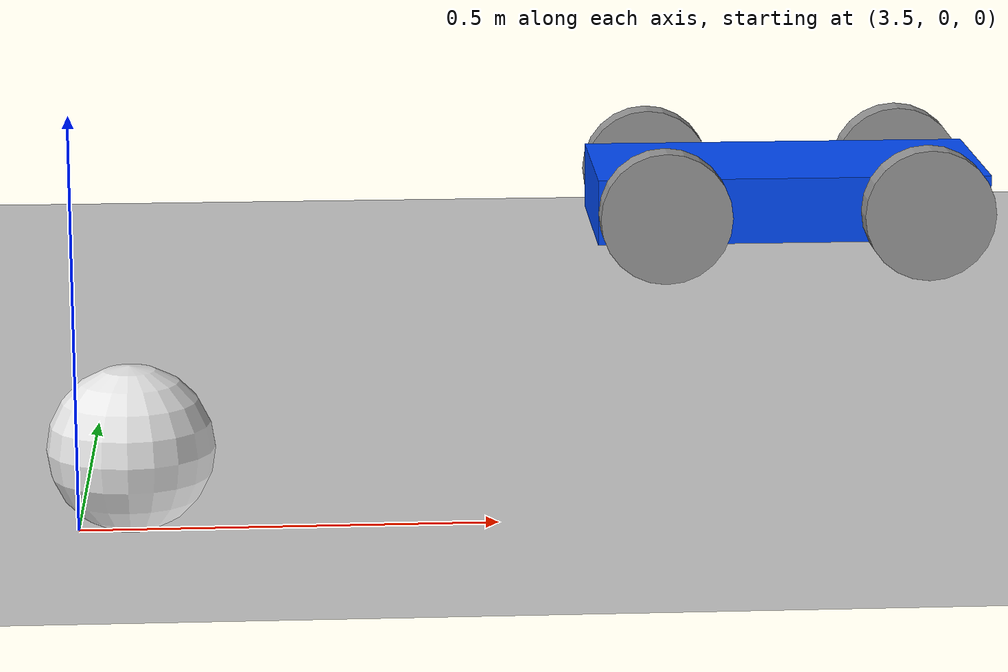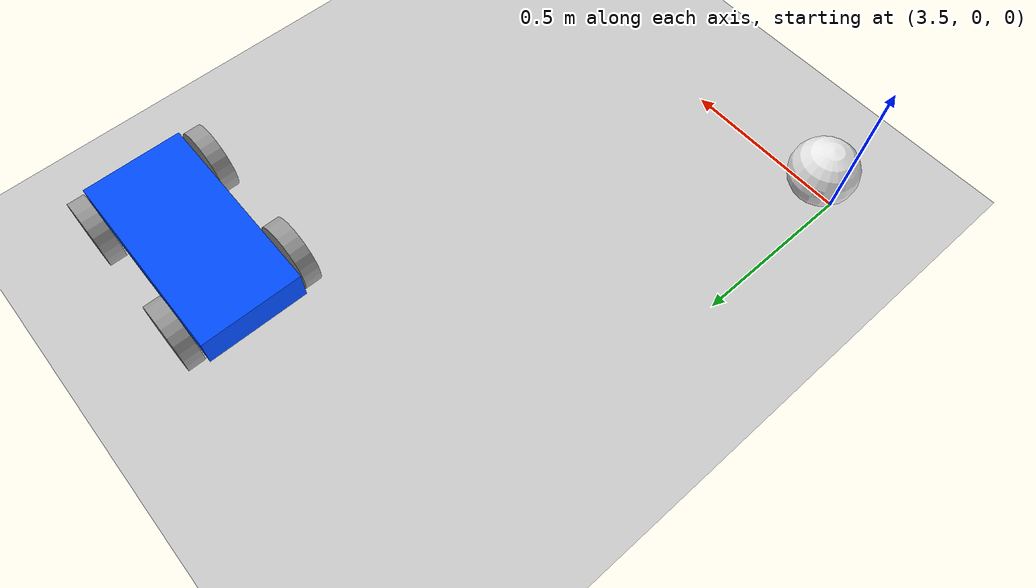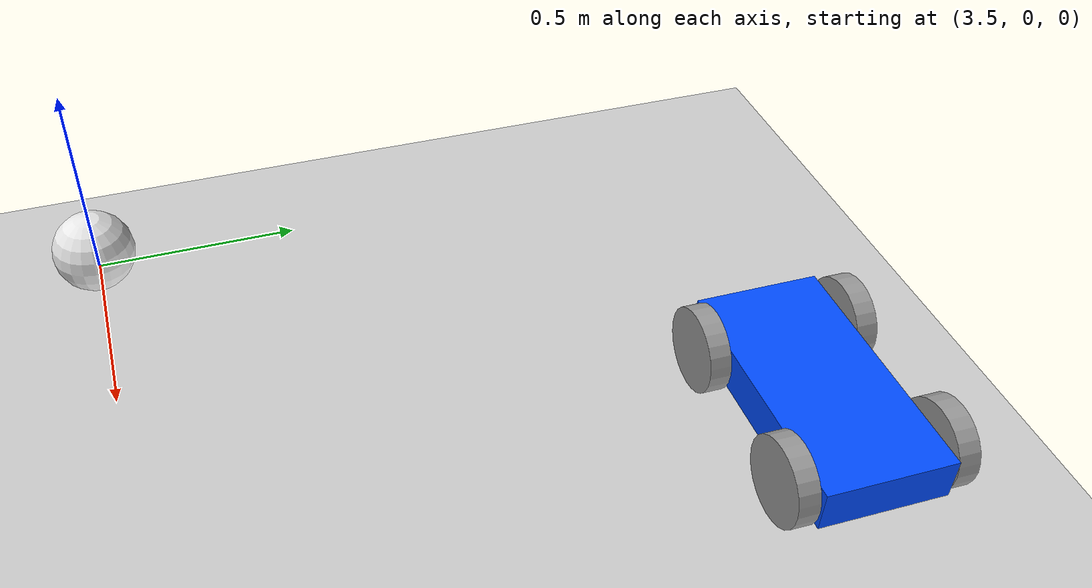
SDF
<sdf version="1.6">
 <world name="default">
  <model name="ground_plane">
   <static>1</static>
   <link name="link">
    <collision name="collision">
     <geometry><plane><normal>0 0 1</normal><size>100 100</size></plane></geometry>
     <surface>
      <contact><collide_bitmask>65535</collide_bitmask></contact>
      <friction><ode><mu>100</mu><mu2>50</mu2></ode></friction>
     </surface>
    </collision>
    <visual name="visual">
     <cast_shadows>0</cast_shadows>
     <geometry><plane><normal>0 0 1</normal><size>100 100</size></plane></geometry>
     <material>
      <script><uri>file://media/materials/scripts/gazebo.material</uri><name>Gazebo/Grey</name></script>
     </material>
    </visual>
   </link>
  </model>
  <model name="robot">
   <static>0</static>
   <link name="chassis">
    <inertial>
     <mass>1</mass>
     <inertia>
      <ixx>0.166667</ixx>
      <ixy>0</ixy>
      <ixz>0</ixz>
      <iyy>0.166667</iyy>
      <iyz>0</iyz>
      <izz>0.166667</izz>
     </inertia>
    </inertial>
    <visual name="visual">
     <geometry><box><size>0.6 0.3 0.1</size></box></geometry>
     <material>
      <lighting>1</lighting>
      <script><uri>file://media/materials/scripts/gazebo.material</uri><name>Gazebo/Grey</name></script>
      <shader type="vertex"><normal_map>__default__</normal_map></shader>
      <ambient>0.3 0.3 0.3 1</ambient>
      <diffuse>0 0.298 1 1</diffuse>
      <specular>0.01 0.01 0.01 1</specular>
      <emissive>0 0 0 1</emissive>
     </material>
    </visual>
    <collision name="collision">
     <geometry><box><size>0.6 0.3 0.1</size></box></geometry>
     <surface>
      <friction>
       <ode><mu>1</mu><mu2>1</mu2><fdir1>0 0 0</fdir1><slip1>0</slip1><slip2>0</slip2></ode>
       <torsional>
        <coefficient>1</coefficient>
        <patch_radius>0</patch_radius>
        <surface_radius>0</surface_radius>
        <use_patch_radius>1</use_patch_radius>
        <ode><slip>0</slip></ode>
       </torsional>
      </friction>
      <bounce><restitution_coefficient>0</restitution_coefficient><threshold>1e+06</threshold></bounce>
      <contact>
       <collide_without_contact>0</collide_without_contact>
       <collide_without_contact_bitmask>1</collide_without_contact_bitmask>
       <collide_bitmask>1</collide_bitmask>
       <ode>
        <soft_cfm>0</soft_cfm>
        <soft_erp>0.2</soft_erp>
        <kp>1e+13</kp>
        <kd>1</kd>
        <max_vel>0.01</max_vel>
        <min_depth>0</min_depth>
       </ode>
       <bullet>
        <split_impulse>1</split_impulse>
        <split_impulse_penetration_threshold>-0.01</split_impulse_penetration_threshold>
        <soft_cfm>0</soft_cfm>
        <soft_erp>0.2</soft_erp>
        <kp>1e+13</kp>
        <kd>1</kd>
       </bullet>
      </contact>
     </surface>
    </collision>
   </link>
   <link name="front_left">
    <inertial>
     <mass>1</mass>
     <inertia><ixx>0.145833</ixx><ixy>0</ixy><ixz>0</ixz><iyy>0.145833</iyy><iyz>0</iyz><izz>0.125</izz></inertia>
    </inertial>
    <pose>-0.2 -0.18016 0 1.57 -0 0</pose>
    <visual name="visual">
     <geometry><cylinder><radius>0.1</radius><length>0.05</length></cylinder></geometry>
     <material>
      <lighting>1</lighting>
      <script><uri>file://media/materials/scripts/gazebo.material</uri><name>Gazebo/Grey</name></script>
      <shader type="vertex"><normal_map>__default__</normal_map></shader>
      <ambient>0.3 0.3 0.3 1</ambient>
      <diffuse>0 0 0 1</diffuse>
      <specular>0.01 0.01 0.01 1</specular>
      <emissive>0 0 0 1</emissive>
     </material>
    </visual>
    <collision name="collision">
     <geometry><cylinder><radius>0.1</radius><length>0.05</length></cylinder></geometry>
     <surface>
      <friction>
       <ode><mu>1</mu><mu2>1</mu2><fdir1>0 0 0</fdir1><slip1>0</slip1><slip2>0</slip2></ode>
       <torsional>
        <coefficient>1</coefficient>
        <patch_radius>0</patch_radius>
        <surface_radius>0</surface_radius>
        <use_patch_radius>1</use_patch_radius>
        <ode><slip>0</slip></ode>
       </torsional>
      </friction>
      <bounce><restitution_coefficient>0</restitution_coefficient><threshold>1e+06</threshold></bounce>
      <contact>
       <collide_without_contact>0</collide_without_contact>
       <collide_without_contact_bitmask>1</collide_without_contact_bitmask>
       <collide_bitmask>1</collide_bitmask>
       <ode>
        <soft_cfm>0</soft_cfm>
        <soft_erp>0.2</soft_erp>
        <kp>1e+13</kp>
        <kd>1</kd>
        <max_vel>0.01</max_vel>
        <min_depth>0</min_depth>
       </ode>
       <bullet>
        <split_impulse>1</split_impulse>
        <split_impulse_penetration_threshold>-0.01</split_impulse_penetration_threshold>
        <soft_cfm>0</soft_cfm>
        <soft_erp>0.2</soft_erp>
        <kp>1e+13</kp>
        <kd>1</kd>
       </bullet>
      </contact>
     </surface>
    </collision>
   </link>
   <link name="front_right">
    <inertial>
     <mass>1</mass>
     <inertia><ixx>0.145833</ixx><ixy>0</ixy><ixz>0</ixz><iyy>0.145833</iyy><iyz>0</iyz><izz>0.125</izz></inertia>
    </inertial>
    <pose>-0.2 0.18016 0 1.57 -0 0</pose>
    <visual name="visual">
     <geometry><cylinder><radius>0.1</radius><length>0.05</length></cylinder></geometry>
     <material>
      <lighting>1</lighting>
      <script><uri>file://media/materials/scripts/gazebo.material</uri><name>Gazebo/Grey</name></script>
      <shader type="vertex"><normal_map>__default__</normal_map></shader>
      <ambient>0.3 0.3 0.3 1</ambient>
      <diffuse>0 0 0 1</diffuse>
      <specular>0.01 0.01 0.01 1</specular>
      <emissive>0 0 0 1</emissive>
     </material>
    </visual>
    <collision name="collision">
     <geometry><cylinder><radius>0.1</radius><length>0.05</length></cylinder></geometry>
     <surface>
      <friction>
       <ode><mu>1</mu><mu2>1</mu2><fdir1>0 0 0</fdir1><slip1>0</slip1><slip2>0</slip2></ode>
       <torsional>
        <coefficient>1</coefficient>
        <patch_radius>0</patch_radius>
        <surface_radius>0</surface_radius>
        <use_patch_radius>1</use_patch_radius>
        <ode><slip>0</slip></ode>
       </torsional>
      </friction>
      <bounce><restitution_coefficient>0</restitution_coefficient><threshold>1e+06</threshold></bounce>
      <contact>
       <collide_without_contact>0</collide_without_contact>
       <collide_without_contact_bitmask>1</collide_without_contact_bitmask>
       <collide_bitmask>1</collide_bitmask>
       <ode>
        <soft_cfm>0</soft_cfm>
        <soft_erp>0.2</soft_erp>
        <kp>1e+13</kp>
        <kd>1</kd>
        <max_vel>0.01</max_vel>
        <min_depth>0</min_depth>
       </ode>
       <bullet>
        <split_impulse>1</split_impulse>
        <split_impulse_penetration_threshold>-0.01</split_impulse_penetration_threshold>
        <soft_cfm>0</soft_cfm>
        <soft_erp>0.2</soft_erp>
        <kp>1e+13</kp>
        <kd>1</kd>
       </bullet>
      </contact>
     </surface>
    </collision>
   </link>
   <link name="rear_left">
    <inertial>
     <mass>1</mass>
     <inertia><ixx>0.145833</ixx><ixy>0</ixy><ixz>0</ixz><iyy>0.145833</iyy><iyz>0</iyz><izz>0.125</izz></inertia>
    </inertial>
    <pose>0.2 -0.18016 0 1.57 -0 0</pose>
    <visual name="visual">
     <geometry><cylinder><radius>0.1</radius><length>0.05</length></cylinder></geometry>
     <material>
      <lighting>1</lighting>
      <script><uri>file://media/materials/scripts/gazebo.material</uri><name>Gazebo/Grey</name></script>
      <shader type="vertex"><normal_map>__default__</normal_map></shader>
      <ambient>0.3 0.3 0.3 1</ambient>
      <diffuse>0 0 0 1</diffuse>
      <specular>0.01 0.01 0.01 1</specular>
      <emissive>0 0 0 1</emissive>
     </material>
    </visual>
    <collision name="collision">
     <geometry><cylinder><radius>0.1</radius><length>0.05</length></cylinder></geometry>
     <surface>
      <friction>
       <ode><mu>1</mu><mu2>1</mu2><fdir1>0 0 0</fdir1><slip1>0</slip1><slip2>0</slip2></ode>
       <torsional>
        <coefficient>1</coefficient>
        <patch_radius>0</patch_radius>
        <surface_radius>0</surface_radius>
        <use_patch_radius>1</use_patch_radius>
        <ode><slip>0</slip></ode>
       </torsional>
      </friction>
      <bounce><restitution_coefficient>0</restitution_coefficient><threshold>1e+06</threshold></bounce>
      <contact>
       <collide_without_contact>0</collide_without_contact>
       <collide_without_contact_bitmask>1</collide_without_contact_bitmask>
       <collide_bitmask>1</collide_bitmask>
       <ode>
        <soft_cfm>0</soft_cfm>
        <soft_erp>0.2</soft_erp>
        <kp>1e+13</kp>
        <kd>1</kd>
        <max_vel>0.01</max_vel>
        <min_depth>0</min_depth>
       </ode>
       <bullet>
        <split_impulse>1</split_impulse>
        <split_impulse_penetration_threshold>-0.01</split_impulse_penetration_threshold>
        <soft_cfm>0</soft_cfm>
        <soft_erp>0.2</soft_erp>
        <kp>1e+13</kp>
        <kd>1</kd>
       </bullet>
      </contact>
     </surface>
    </collision>
   </link>
   <link name="rear_right">
    <inertial>
     <mass>1</mass>
     <inertia><ixx>0.145833</ixx><ixy>0</ixy><ixz>0</ixz><iyy>0.145833</iyy><iyz>0</iyz><izz>0.125</izz></inertia>
    </inertial>
    <pose>0.2 0.18016 0 1.57 -0 0</pose>
    <visual name="visual">
     <geometry><cylinder><radius>0.1</radius><length>0.05</length></cylinder></geometry>
     <material>
      <lighting>1</lighting>
      <script><uri>file://media/materials/scripts/gazebo.material</uri><name>Gazebo/Grey</name></script>
      <shader type="vertex"><normal_map>__default__</normal_map></shader>
      <ambient>0.3 0.3 0.3 1</ambient>
      <diffuse>0 0 0 1</diffuse>
      <specular>0.01 0.01 0.01 1</specular>
      <emissive>0 0 0 1</emissive>
     </material>
    </visual>
    <collision name="collision">
     <geometry><cylinder><radius>0.1</radius><length>0.05</length></cylinder></geometry>
     <surface>
      <friction>
       <ode><mu>1</mu><mu2>1</mu2><fdir1>0 0 0</fdir1><slip1>0</slip1><slip2>0</slip2></ode>
       <torsional>
        <coefficient>1</coefficient>
        <patch_radius>0</patch_radius>
        <surface_radius>0</surface_radius>
        <use_patch_radius>1</use_patch_radius>
        <ode><slip>0</slip></ode>
       </torsional>
      </friction>
      <bounce><restitution_coefficient>0</restitution_coefficient><threshold>1e+06</threshold></bounce>
      <contact>
       <collide_without_contact>0</collide_without_contact>
       <collide_without_contact_bitmask>1</collide_without_contact_bitmask>
       <collide_bitmask>1</collide_bitmask>
       <ode>
        <soft_cfm>0</soft_cfm>
        <soft_erp>0.2</soft_erp>
        <kp>1e+13</kp>
        <kd>1</kd>
        <max_vel>0.01</max_vel>
        <min_depth>0</min_depth>
       </ode>
       <bullet>
        <split_impulse>1</split_impulse>
        <split_impulse_penetration_threshold>-0.01</split_impulse_penetration_threshold>
        <soft_cfm>0</soft_cfm>
        <soft_erp>0.2</soft_erp>
        <kp>1e+13</kp>
        <kd>1</kd>
       </bullet>
      </contact>
     </surface>
    </collision>
   </link>
   <joint name="front_left_joint" type="revolute">
    <parent>chassis</parent>
    <child>front_left</child>
    <axis>
     <xyz>0 0 1</xyz>
     <use_parent_model_frame>0</use_parent_model_frame>
     <limit>
      <lower>-1.79769e+308</lower>
      <upper>1.79769e+308</upper>
      <effort>-1</effort>
      <velocity>-1</velocity>
     </limit>
     <dynamics>
      <spring_reference>0</spring_reference>
      <spring_stiffness>0</spring_stiffness>
      <damping>0</damping>
      <friction>0</friction>
     </dynamics>
    </axis>
    <physics>
     <ode><limit><cfm>0</cfm><erp>0.2</erp></limit><suspension><cfm>0</cfm><erp>0.2</erp></suspension></ode>
    </physics>
   </joint>
   <joint name="front_right_joint" type="revolute">
    <parent>chassis</parent>
    <child>front_right</child>
    <axis>
     <xyz>0 0 1</xyz>
     <use_parent_model_frame>0</use_parent_model_frame>
     <limit>
      <lower>-1.79769e+308</lower>
      <upper>1.79769e+308</upper>
      <effort>-1</effort>
      <velocity>-1</velocity>
     </limit>
     <dynamics>
      <spring_reference>0</spring_reference>
      <spring_stiffness>0</spring_stiffness>
      <damping>0</damping>
     </dynamics>
    </axis>
    <physics>
     <ode><limit><cfm>0</cfm><erp>0.2</erp></limit><suspension><cfm>0</cfm><erp>0.2</erp></suspension></ode>
    </physics>
   </joint>
   <joint name="rear_left_joint" type="revolute">
    <parent>chassis</parent>
    <child>rear_left</child>
    <axis>
     <xyz>0 0 1</xyz>
     <use_parent_model_frame>0</use_parent_model_frame>
     <limit>
      <lower>-1.79769e+308</lower>
      <upper>1.79769e+308</upper>
      <effort>-1</effort>
      <velocity>-1</velocity>
     </limit>
     <dynamics>
      <spring_reference>0</spring_reference>
      <spring_stiffness>0</spring_stiffness>
      <damping>0</damping>
     </dynamics>
    </axis>
    <physics>
     <ode><limit><cfm>0</cfm><erp>0.2</erp></limit><suspension><cfm>0</cfm><erp>0.2</erp></suspension></ode>
    </physics>
   </joint>
   <joint name="rear_right_joint" type="revolute">
    <parent>chassis</parent>
    <child>rear_right</child>
    <axis>
     <xyz>0 0 1</xyz>
     <use_parent_model_frame>0</use_parent_model_frame>
     <limit>
      <lower>-1.79769e+308</lower>
      <upper>1.79769e+308</upper>
      <effort>-1</effort>
      <velocity>-1</velocity>
     </limit>
     <dynamics>
      <spring_reference>0</spring_reference>
      <spring_stiffness>0</spring_stiffness>
      <damping>0</damping>
     </dynamics>
    </axis>
    <physics>
     <ode><limit><cfm>0</cfm><erp>0.2</erp></limit><suspension><cfm>0</cfm><erp>0.2</erp></suspension></ode>
    </physics>
   </joint>
   <static>0</static>
   <pose>4.51592 1.47086 0.10002 0 -0 -0.000469</pose>
  </model>
  <model name="my_ball">
   <link name="link_0">
    <inertial>
     <mass>1</mass>
     <inertia><ixx>0.1</ixx><ixy>0</ixy><ixz>0</ixz><iyy>0.1</iyy><iyz>0</iyz><izz>0.1</izz></inertia>
    </inertial>
    <visual name="visual">
     <geometry><sphere><radius>0.1</radius></sphere></geometry>
     <material>
      <lighting>1</lighting>
      <script><uri>file://media/materials/scripts/gazebo.material</uri><name>Gazebo/White</name></script>
      <shader type="vertex"><normal_map>__default__</normal_map></shader>
      <ambient>1 1 1 1</ambient>
      <diffuse>1 1 1 1</diffuse>
      <specular>1 1 1 1</specular>
      <emissive>1 1 1 1</emissive>
     </material>
    </visual>
    <collision name="collision">
     <geometry><sphere><radius>0.1</radius></sphere></geometry>
     <surface>
      <friction>
       <ode><mu>1</mu><mu2>1</mu2><fdir1>0 0 0</fdir1><slip1>0</slip1><slip2>0</slip2></ode>
       <torsional>
        <coefficient>1</coefficient>
        <patch_radius>0</patch_radius>
        <surface_radius>0</surface_radius>
        <use_patch_radius>1</use_patch_radius>
        <ode><slip>0</slip></ode>
       </torsional>
      </friction>
      <bounce><restitution_coefficient>0</restitution_coefficient><threshold>1e+06</threshold></bounce>
      <contact>
       <collide_without_contact>0</collide_without_contact>
       <collide_without_contact_bitmask>1</collide_without_contact_bitmask>
       <collide_bitmask>1</collide_bitmask>
       <ode>
        <soft_cfm>0</soft_cfm>
        <soft_erp>0.2</soft_erp>
        <kp>1e+13</kp>
        <kd>1</kd>
        <max_vel>0.01</max_vel>
        <min_depth>0</min_depth>
       </ode>
       <bullet>
        <split_impulse>1</split_impulse>
        <split_impulse_penetration_threshold>-0.01</split_impulse_penetration_threshold>
        <soft_cfm>0</soft_cfm>
        <soft_erp>0.2</soft_erp>
        <kp>1e+13</kp>
        <kd>1</kd>
       </bullet>
      </contact>
     </surface>
    </collision>
   </link>
   <static>0</static>
   <pose>3.56379 0.000574 0.1 0 -0 0</pose>
  </model>
 </world>
</sdf>
